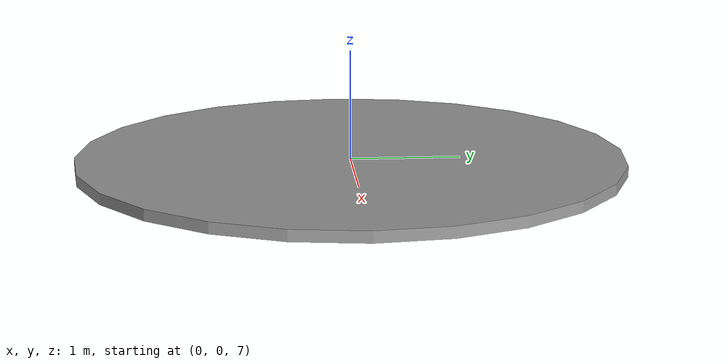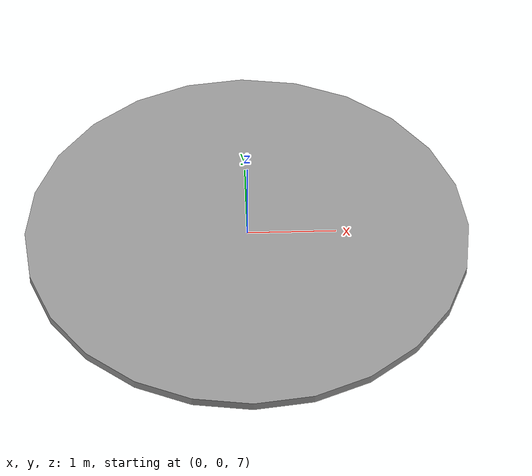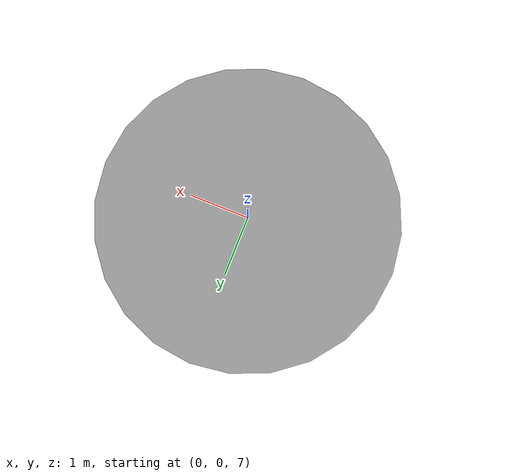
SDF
<?xml version='1.0'?>
<sdf version='1.7'><model name='side_neg'>
  <pose>0 0 7 0 0 0</pose>
  <link name='link_1'>
    <turnGravityOff>1</turnGravityOff>
    <gravity>0</gravity>
    <visual name='visual'>
      <geometry>
        <cylinder><radius>2.5</radius><length>0.1</length></cylinder>
      </geometry>
      <material>
        <script>
          <name>Gazebo/Grey</name>
          <uri>file://media/materials/scripts/gazebo.material</uri>
        </script>
      </material>
    </visual>
  </link>
  <plugin name="model_push" filename="libmodel_revolve_z_opp.so"/>
</model>
</sdf>
